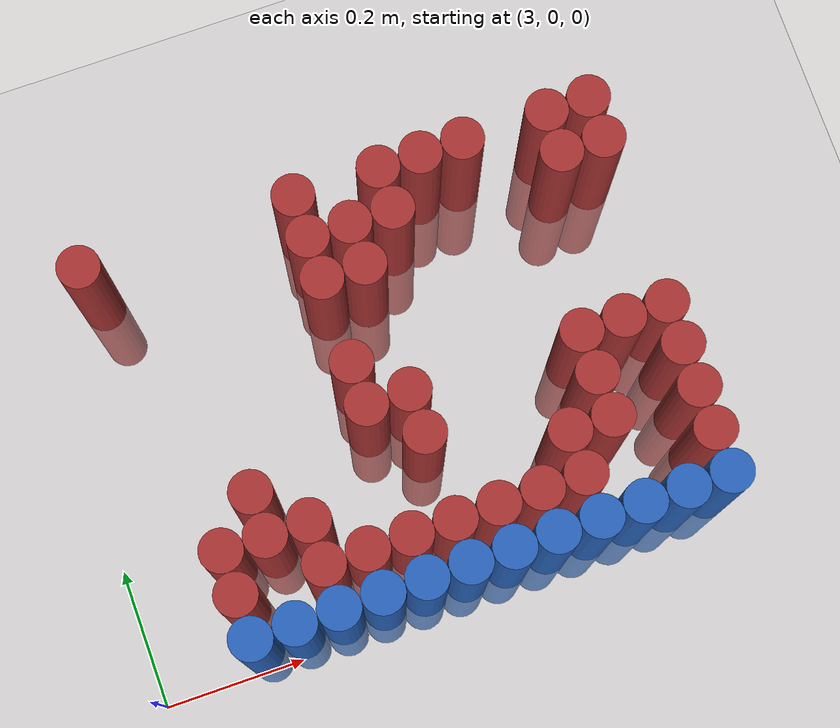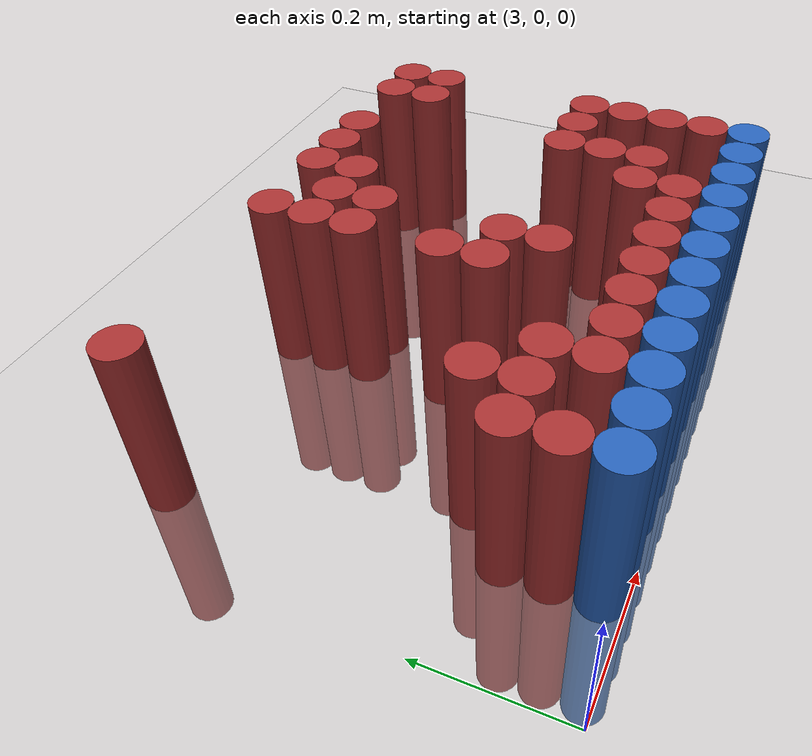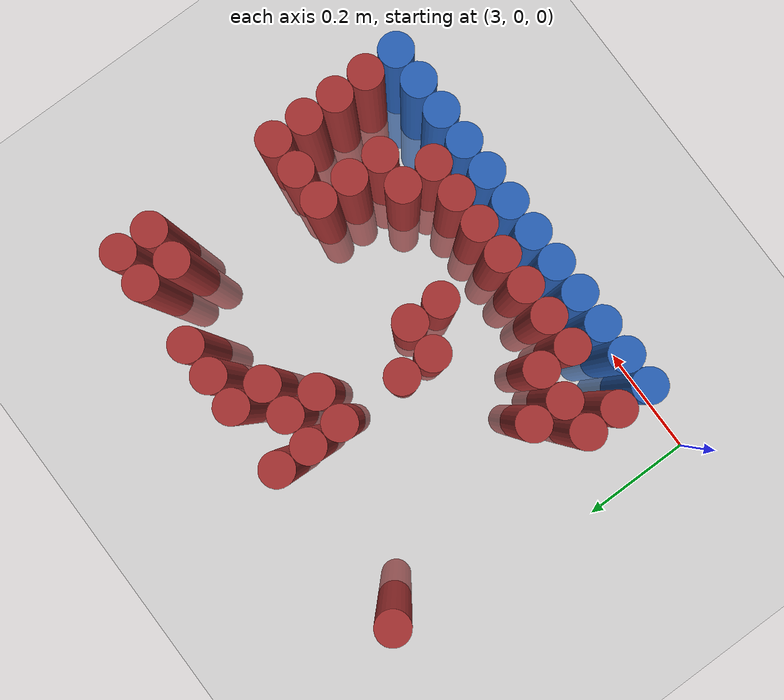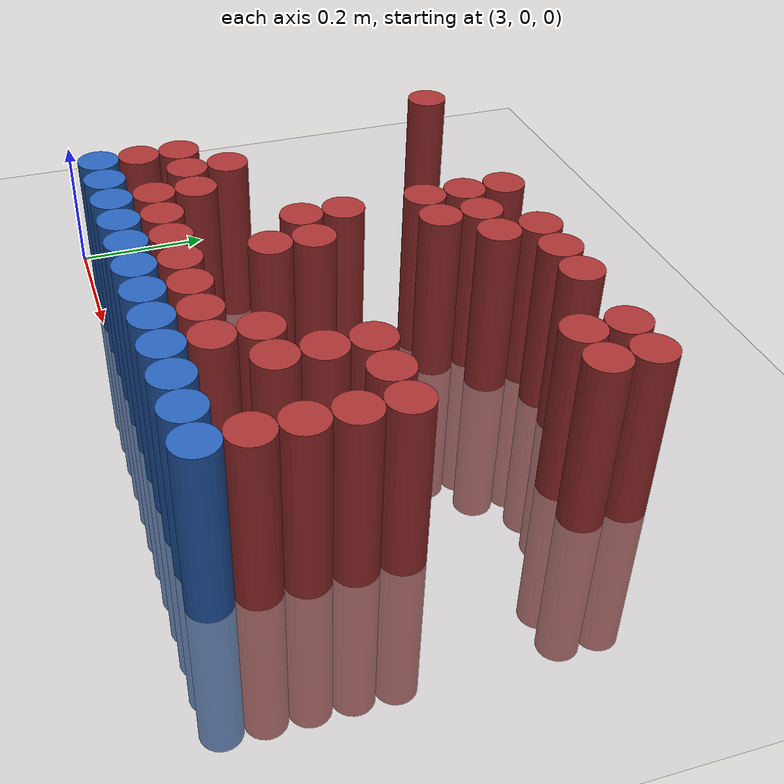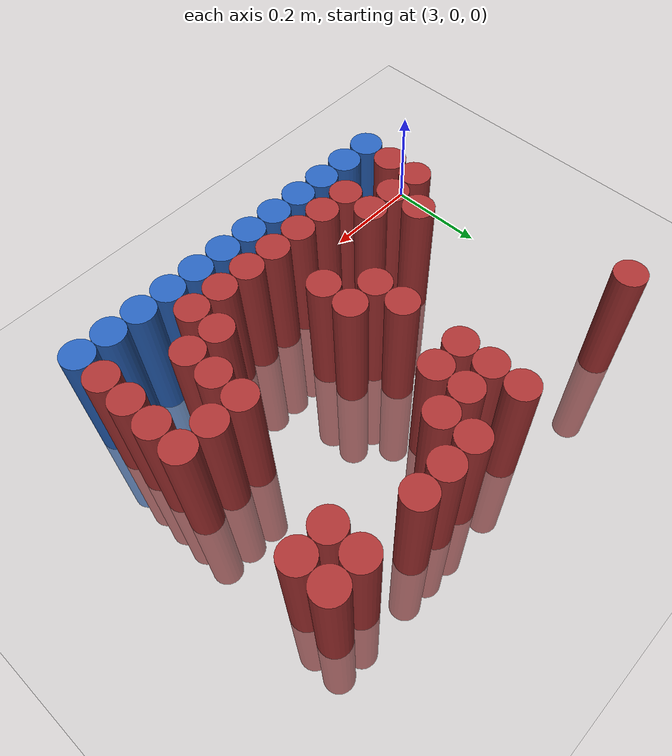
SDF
<sdf version="1.6">
 <world name="default">
  <model name="ground_plane">
   <static>1</static>
   <link name="link">
    <collision name="collision">
     <geometry><plane><normal>0 0 1</normal><size>100 100</size></plane></geometry>
     <surface><friction><ode><mu>100</mu><mu2>50</mu2></ode></friction></surface>
    </collision>
    <visual name="visual">
     <cast_shadows>0</cast_shadows>
     <geometry><plane><normal>0 0 1</normal><size>100 100</size></plane></geometry>
     <material>
      <script><uri>file://media/materials/scripts/gazebo.material</uri><name>Gazebo/Grey</name></script>
     </material>
    </visual>
   </link>
  </model>
  <model name="unit_cylinder_242">
   <static>1</static>
   <pose>3.090000 0.570000 0.000000 0.000000 0.000000 0.000000</pose>
   <link name="link">
    <inertial>
     <mass>1</mass>
     <inertia><ixx>0.145833</ixx><ixy>0</ixy><ixz>0</ixz><iyy>0.145833</iyy><iyz>0</iyz><izz>0.125</izz></inertia>
    </inertial>
    <collision name="collision">
     <geometry><cylinder><radius>0.030000</radius><length>0.5</length></cylinder></geometry>
    </collision>
    <visual name="visual">
     <geometry><cylinder><radius>0.030000</radius><length>0.5</length></cylinder></geometry>
     <material>
      <ambient>0.648000 0.192000 0.192000 1</ambient>
      <diffuse>0.648000 0.192000 0.192000 1</diffuse>
     </material>
     <material>
      <script><name>Gazebo/Grey</name><uri>file://media/materials/scripts/gazebo.material</uri></script>
     </material>
    </visual>
   </link>
  </model>
  <model name="unit_cylinder_243">
   <static>1</static>
   <pose>3.390000 0.570000 0.000000 0.000000 0.000000 0.000000</pose>
   <link name="link">
    <inertial>
     <mass>1</mass>
     <inertia><ixx>0.145833</ixx><ixy>0</ixy><ixz>0</ixz><iyy>0.145833</iyy><iyz>0</iyz><izz>0.125</izz></inertia>
    </inertial>
    <collision name="collision">
     <geometry><cylinder><radius>0.030000</radius><length>0.5</length></cylinder></geometry>
    </collision>
    <visual name="visual">
     <geometry><cylinder><radius>0.030000</radius><length>0.5</length></cylinder></geometry>
     <material>
      <ambient>0.648000 0.192000 0.192000 1</ambient>
      <diffuse>0.648000 0.192000 0.192000 1</diffuse>
     </material>
     <material>
      <script><name>Gazebo/Grey</name><uri>file://media/materials/scripts/gazebo.material</uri></script>
     </material>
    </visual>
   </link>
  </model>
  <model name="unit_cylinder_244">
   <static>1</static>
   <pose>3.510000 0.570000 0.000000 0.000000 0.000000 0.000000</pose>
   <link name="link">
    <inertial>
     <mass>1</mass>
     <inertia><ixx>0.145833</ixx><ixy>0</ixy><ixz>0</ixz><iyy>0.145833</iyy><iyz>0</iyz><izz>0.125</izz></inertia>
    </inertial>
    <collision name="collision">
     <geometry><cylinder><radius>0.030000</radius><length>0.5</length></cylinder></geometry>
    </collision>
    <visual name="visual">
     <geometry><cylinder><radius>0.030000</radius><length>0.5</length></cylinder></geometry>
     <material>
      <ambient>0.648000 0.192000 0.192000 1</ambient>
      <diffuse>0.648000 0.192000 0.192000 1</diffuse>
     </material>
     <material>
      <script><name>Gazebo/Grey</name><uri>file://media/materials/scripts/gazebo.material</uri></script>
     </material>
    </visual>
   </link>
  </model>
  <model name="unit_cylinder_245">
   <static>1</static>
   <pose>3.570000 0.570000 0.000000 0.000000 0.000000 0.000000</pose>
   <link name="link">
    <inertial>
     <mass>1</mass>
     <inertia><ixx>0.145833</ixx><ixy>0</ixy><ixz>0</ixz><iyy>0.145833</iyy><iyz>0</iyz><izz>0.125</izz></inertia>
    </inertial>
    <collision name="collision">
     <geometry><cylinder><radius>0.030000</radius><length>0.5</length></cylinder></geometry>
    </collision>
    <visual name="visual">
     <geometry><cylinder><radius>0.030000</radius><length>0.5</length></cylinder></geometry>
     <material>
      <ambient>0.648000 0.192000 0.192000 1</ambient>
      <diffuse>0.648000 0.192000 0.192000 1</diffuse>
     </material>
     <material>
      <script><name>Gazebo/Grey</name><uri>file://media/materials/scripts/gazebo.material</uri></script>
     </material>
    </visual>
   </link>
  </model>
  <model name="unit_cylinder_246">
   <static>1</static>
   <pose>3.630000 0.570000 0.000000 0.000000 0.000000 0.000000</pose>
   <link name="link">
    <inertial>
     <mass>1</mass>
     <inertia><ixx>0.145833</ixx><ixy>0</ixy><ixz>0</ixz><iyy>0.145833</iyy><iyz>0</iyz><izz>0.125</izz></inertia>
    </inertial>
    <collision name="collision">
     <geometry><cylinder><radius>0.030000</radius><length>0.5</length></cylinder></geometry>
    </collision>
    <visual name="visual">
     <geometry><cylinder><radius>0.030000</radius><length>0.5</length></cylinder></geometry>
     <material>
      <ambient>0.648000 0.192000 0.192000 1</ambient>
      <diffuse>0.648000 0.192000 0.192000 1</diffuse>
     </material>
     <material>
      <script><name>Gazebo/Grey</name><uri>file://media/materials/scripts/gazebo.material</uri></script>
     </material>
    </visual>
   </link>
  </model>
  <model name="unit_cylinder_247">
   <static>1</static>
   <pose>3.750000 0.570000 0.000000 0.000000 0.000000 0.000000</pose>
   <link name="link">
    <inertial>
     <mass>1</mass>
     <inertia><ixx>0.145833</ixx><ixy>0</ixy><ixz>0</ixz><iyy>0.145833</iyy><iyz>0</iyz><izz>0.125</izz></inertia>
    </inertial>
    <collision name="collision">
     <geometry><cylinder><radius>0.030000</radius><length>0.5</length></cylinder></geometry>
    </collision>
    <visual name="visual">
     <geometry><cylinder><radius>0.030000</radius><length>0.5</length></cylinder></geometry>
     <material>
      <ambient>0.648000 0.192000 0.192000 1</ambient>
      <diffuse>0.648000 0.192000 0.192000 1</diffuse>
     </material>
     <material>
      <script><name>Gazebo/Grey</name><uri>file://media/materials/scripts/gazebo.material</uri></script>
     </material>
    </visual>
   </link>
  </model>
  <model name="unit_cylinder_248">
   <static>1</static>
   <pose>3.810000 0.570000 0.000000 0.000000 0.000000 0.000000</pose>
   <link name="link">
    <inertial>
     <mass>1</mass>
     <inertia><ixx>0.145833</ixx><ixy>0</ixy><ixz>0</ixz><iyy>0.145833</iyy><iyz>0</iyz><izz>0.125</izz></inertia>
    </inertial>
    <collision name="collision">
     <geometry><cylinder><radius>0.030000</radius><length>0.5</length></cylinder></geometry>
    </collision>
    <visual name="visual">
     <geometry><cylinder><radius>0.030000</radius><length>0.5</length></cylinder></geometry>
     <material>
      <ambient>0.648000 0.192000 0.192000 1</ambient>
      <diffuse>0.648000 0.192000 0.192000 1</diffuse>
     </material>
     <material>
      <script><name>Gazebo/Grey</name><uri>file://media/materials/scripts/gazebo.material</uri></script>
     </material>
    </visual>
   </link>
  </model>
  <model name="unit_cylinder_255">
   <static>1</static>
   <pose>3.390000 0.510000 0.000000 0.000000 0.000000 0.000000</pose>
   <link name="link">
    <inertial>
     <mass>1</mass>
     <inertia><ixx>0.145833</ixx><ixy>0</ixy><ixz>0</ixz><iyy>0.145833</iyy><iyz>0</iyz><izz>0.125</izz></inertia>
    </inertial>
    <collision name="collision">
     <geometry><cylinder><radius>0.030000</radius><length>0.5</length></cylinder></geometry>
    </collision>
    <visual name="visual">
     <geometry><cylinder><radius>0.030000</radius><length>0.5</length></cylinder></geometry>
     <material>
      <ambient>0.648000 0.192000 0.192000 1</ambient>
      <diffuse>0.648000 0.192000 0.192000 1</diffuse>
     </material>
     <material>
      <script><name>Gazebo/Grey</name><uri>file://media/materials/scripts/gazebo.material</uri></script>
     </material>
    </visual>
   </link>
  </model>
  <model name="unit_cylinder_256">
   <static>1</static>
   <pose>3.450000 0.510000 0.000000 0.000000 0.000000 0.000000</pose>
   <link name="link">
    <inertial>
     <mass>1</mass>
     <inertia><ixx>0.145833</ixx><ixy>0</ixy><ixz>0</ixz><iyy>0.145833</iyy><iyz>0</iyz><izz>0.125</izz></inertia>
    </inertial>
    <collision name="collision">
     <geometry><cylinder><radius>0.030000</radius><length>0.5</length></cylinder></geometry>
    </collision>
    <visual name="visual">
     <geometry><cylinder><radius>0.030000</radius><length>0.5</length></cylinder></geometry>
     <material>
      <ambient>0.648000 0.192000 0.192000 1</ambient>
      <diffuse>0.648000 0.192000 0.192000 1</diffuse>
     </material>
     <material>
      <script><name>Gazebo/Grey</name><uri>file://media/materials/scripts/gazebo.material</uri></script>
     </material>
    </visual>
   </link>
  </model>
  <model name="unit_cylinder_257">
   <static>1</static>
   <pose>3.510000 0.510000 0.000000 0.000000 0.000000 0.000000</pose>
   <link name="link">
    <inertial>
     <mass>1</mass>
     <inertia><ixx>0.145833</ixx><ixy>0</ixy><ixz>0</ixz><iyy>0.145833</iyy><iyz>0</iyz><izz>0.125</izz></inertia>
    </inertial>
    <collision name="collision">
     <geometry><cylinder><radius>0.030000</radius><length>0.5</length></cylinder></geometry>
    </collision>
    <visual name="visual">
     <geometry><cylinder><radius>0.030000</radius><length>0.5</length></cylinder></geometry>
     <material>
      <ambient>0.648000 0.192000 0.192000 1</ambient>
      <diffuse>0.648000 0.192000 0.192000 1</diffuse>
     </material>
     <material>
      <script><name>Gazebo/Grey</name><uri>file://media/materials/scripts/gazebo.material</uri></script>
     </material>
    </visual>
   </link>
  </model>
  <model name="unit_cylinder_258">
   <static>1</static>
   <pose>3.750000 0.510000 0.000000 0.000000 0.000000 0.000000</pose>
   <link name="link">
    <inertial>
     <mass>1</mass>
     <inertia><ixx>0.145833</ixx><ixy>0</ixy><ixz>0</ixz><iyy>0.145833</iyy><iyz>0</iyz><izz>0.125</izz></inertia>
    </inertial>
    <collision name="collision">
     <geometry><cylinder><radius>0.030000</radius><length>0.5</length></cylinder></geometry>
    </collision>
    <visual name="visual">
     <geometry><cylinder><radius>0.030000</radius><length>0.5</length></cylinder></geometry>
     <material>
      <ambient>0.648000 0.192000 0.192000 1</ambient>
      <diffuse>0.648000 0.192000 0.192000 1</diffuse>
     </material>
     <material>
      <script><name>Gazebo/Grey</name><uri>file://media/materials/scripts/gazebo.material</uri></script>
     </material>
    </visual>
   </link>
  </model>
  <model name="unit_cylinder_259">
   <static>1</static>
   <pose>3.810000 0.510000 0.000000 0.000000 0.000000 0.000000</pose>
   <link name="link">
    <inertial>
     <mass>1</mass>
     <inertia><ixx>0.145833</ixx><ixy>0</ixy><ixz>0</ixz><iyy>0.145833</iyy><iyz>0</iyz><izz>0.125</izz></inertia>
    </inertial>
    <collision name="collision">
     <geometry><cylinder><radius>0.030000</radius><length>0.5</length></cylinder></geometry>
    </collision>
    <visual name="visual">
     <geometry><cylinder><radius>0.030000</radius><length>0.5</length></cylinder></geometry>
     <material>
      <ambient>0.648000 0.192000 0.192000 1</ambient>
      <diffuse>0.648000 0.192000 0.192000 1</diffuse>
     </material>
     <material>
      <script><name>Gazebo/Grey</name><uri>file://media/materials/scripts/gazebo.material</uri></script>
     </material>
    </visual>
   </link>
  </model>
  <model name="unit_cylinder_265">
   <static>1</static>
   <pose>3.390000 0.450000 0.000000 0.000000 0.000000 0.000000</pose>
   <link name="link">
    <inertial>
     <mass>1</mass>
     <inertia><ixx>0.145833</ixx><ixy>0</ixy><ixz>0</ixz><iyy>0.145833</iyy><iyz>0</iyz><izz>0.125</izz></inertia>
    </inertial>
    <collision name="collision">
     <geometry><cylinder><radius>0.030000</radius><length>0.5</length></cylinder></geometry>
    </collision>
    <visual name="visual">
     <geometry><cylinder><radius>0.030000</radius><length>0.5</length></cylinder></geometry>
     <material>
      <ambient>0.648000 0.192000 0.192000 1</ambient>
      <diffuse>0.648000 0.192000 0.192000 1</diffuse>
     </material>
     <material>
      <script><name>Gazebo/Grey</name><uri>file://media/materials/scripts/gazebo.material</uri></script>
     </material>
    </visual>
   </link>
  </model>
  <model name="unit_cylinder_266">
   <static>1</static>
   <pose>3.450000 0.450000 0.000000 0.000000 0.000000 0.000000</pose>
   <link name="link">
    <inertial>
     <mass>1</mass>
     <inertia><ixx>0.145833</ixx><ixy>0</ixy><ixz>0</ixz><iyy>0.145833</iyy><iyz>0</iyz><izz>0.125</izz></inertia>
    </inertial>
    <collision name="collision">
     <geometry><cylinder><radius>0.030000</radius><length>0.5</length></cylinder></geometry>
    </collision>
    <visual name="visual">
     <geometry><cylinder><radius>0.030000</radius><length>0.5</length></cylinder></geometry>
     <material>
      <ambient>0.648000 0.192000 0.192000 1</ambient>
      <diffuse>0.648000 0.192000 0.192000 1</diffuse>
     </material>
     <material>
      <script><name>Gazebo/Grey</name><uri>file://media/materials/scripts/gazebo.material</uri></script>
     </material>
    </visual>
   </link>
  </model>
  <model name="unit_cylinder_277">
   <static>1</static>
   <pose>3.390000 0.330000 0.000000 0.000000 0.000000 0.000000</pose>
   <link name="link">
    <inertial>
     <mass>1</mass>
     <inertia><ixx>0.145833</ixx><ixy>0</ixy><ixz>0</ixz><iyy>0.145833</iyy><iyz>0</iyz><izz>0.125</izz></inertia>
    </inertial>
    <collision name="collision">
     <geometry><cylinder><radius>0.030000</radius><length>0.5</length></cylinder></geometry>
    </collision>
    <visual name="visual">
     <geometry><cylinder><radius>0.030000</radius><length>0.5</length></cylinder></geometry>
     <material>
      <ambient>0.648000 0.192000 0.192000 1</ambient>
      <diffuse>0.648000 0.192000 0.192000 1</diffuse>
     </material>
     <material>
      <script><name>Gazebo/Grey</name><uri>file://media/materials/scripts/gazebo.material</uri></script>
     </material>
    </visual>
   </link>
  </model>
  <model name="unit_cylinder_286">
   <static>1</static>
   <pose>3.390000 0.270000 0.000000 0.000000 0.000000 0.000000</pose>
   <link name="link">
    <inertial>
     <mass>1</mass>
     <inertia><ixx>0.145833</ixx><ixy>0</ixy><ixz>0</ixz><iyy>0.145833</iyy><iyz>0</iyz><izz>0.125</izz></inertia>
    </inertial>
    <collision name="collision">
     <geometry><cylinder><radius>0.030000</radius><length>0.5</length></cylinder></geometry>
    </collision>
    <visual name="visual">
     <geometry><cylinder><radius>0.030000</radius><length>0.5</length></cylinder></geometry>
     <material>
      <ambient>0.648000 0.192000 0.192000 1</ambient>
      <diffuse>0.648000 0.192000 0.192000 1</diffuse>
     </material>
     <material>
      <script><name>Gazebo/Grey</name><uri>file://media/materials/scripts/gazebo.material</uri></script>
     </material>
    </visual>
   </link>
  </model>
  <model name="unit_cylinder_287">
   <static>1</static>
   <pose>3.450000 0.270000 0.000000 0.000000 0.000000 0.000000</pose>
   <link name="link">
    <inertial>
     <mass>1</mass>
     <inertia><ixx>0.145833</ixx><ixy>0</ixy><ixz>0</ixz><iyy>0.145833</iyy><iyz>0</iyz><izz>0.125</izz></inertia>
    </inertial>
    <collision name="collision">
     <geometry><cylinder><radius>0.030000</radius><length>0.5</length></cylinder></geometry>
    </collision>
    <visual name="visual">
     <geometry><cylinder><radius>0.030000</radius><length>0.5</length></cylinder></geometry>
     <material>
      <ambient>0.648000 0.192000 0.192000 1</ambient>
      <diffuse>0.648000 0.192000 0.192000 1</diffuse>
     </material>
     <material>
      <script><name>Gazebo/Grey</name><uri>file://media/materials/scripts/gazebo.material</uri></script>
     </material>
    </visual>
   </link>
  </model>
  <model name="unit_cylinder_288">
   <static>1</static>
   <pose>3.690000 0.270000 0.000000 0.000000 0.000000 0.000000</pose>
   <link name="link">
    <inertial>
     <mass>1</mass>
     <inertia><ixx>0.145833</ixx><ixy>0</ixy><ixz>0</ixz><iyy>0.145833</iyy><iyz>0</iyz><izz>0.125</izz></inertia>
    </inertial>
    <collision name="collision">
     <geometry><cylinder><radius>0.030000</radius><length>0.5</length></cylinder></geometry>
    </collision>
    <visual name="visual">
     <geometry><cylinder><radius>0.030000</radius><length>0.5</length></cylinder></geometry>
     <material>
      <ambient>0.648000 0.192000 0.192000 1</ambient>
      <diffuse>0.648000 0.192000 0.192000 1</diffuse>
     </material>
     <material>
      <script><name>Gazebo/Grey</name><uri>file://media/materials/scripts/gazebo.material</uri></script>
     </material>
    </visual>
   </link>
  </model>
  <model name="unit_cylinder_289">
   <static>1</static>
   <pose>3.750000 0.270000 0.000000 0.000000 0.000000 0.000000</pose>
   <link name="link">
    <inertial>
     <mass>1</mass>
     <inertia><ixx>0.145833</ixx><ixy>0</ixy><ixz>0</ixz><iyy>0.145833</iyy><iyz>0</iyz><izz>0.125</izz></inertia>
    </inertial>
    <collision name="collision">
     <geometry><cylinder><radius>0.030000</radius><length>0.5</length></cylinder></geometry>
    </collision>
    <visual name="visual">
     <geometry><cylinder><radius>0.030000</radius><length>0.5</length></cylinder></geometry>
     <material>
      <ambient>0.648000 0.192000 0.192000 1</ambient>
      <diffuse>0.648000 0.192000 0.192000 1</diffuse>
     </material>
     <material>
      <script><name>Gazebo/Grey</name><uri>file://media/materials/scripts/gazebo.material</uri></script>
     </material>
    </visual>
   </link>
  </model>
  <model name="unit_cylinder_290">
   <static>1</static>
   <pose>3.810000 0.270000 0.000000 0.000000 0.000000 0.000000</pose>
   <link name="link">
    <inertial>
     <mass>1</mass>
     <inertia><ixx>0.145833</ixx><ixy>0</ixy><ixz>0</ixz><iyy>0.145833</iyy><iyz>0</iyz><izz>0.125</izz></inertia>
    </inertial>
    <collision name="collision">
     <geometry><cylinder><radius>0.030000</radius><length>0.5</length></cylinder></geometry>
    </collision>
    <visual name="visual">
     <geometry><cylinder><radius>0.030000</radius><length>0.5</length></cylinder></geometry>
     <material>
      <ambient>0.648000 0.192000 0.192000 1</ambient>
      <diffuse>0.648000 0.192000 0.192000 1</diffuse>
     </material>
     <material>
      <script><name>Gazebo/Grey</name><uri>file://media/materials/scripts/gazebo.material</uri></script>
     </material>
    </visual>
   </link>
  </model>
  <model name="unit_cylinder_295">
   <static>1</static>
   <pose>3.210000 0.210000 0.000000 0.000000 0.000000 0.000000</pose>
   <link name="link">
    <inertial>
     <mass>1</mass>
     <inertia><ixx>0.145833</ixx><ixy>0</ixy><ixz>0</ixz><iyy>0.145833</iyy><iyz>0</iyz><izz>0.125</izz></inertia>
    </inertial>
    <collision name="collision">
     <geometry><cylinder><radius>0.030000</radius><length>0.5</length></cylinder></geometry>
    </collision>
    <visual name="visual">
     <geometry><cylinder><radius>0.030000</radius><length>0.5</length></cylinder></geometry>
     <material>
      <ambient>0.648000 0.192000 0.192000 1</ambient>
      <diffuse>0.648000 0.192000 0.192000 1</diffuse>
     </material>
     <material>
      <script><name>Gazebo/Grey</name><uri>file://media/materials/scripts/gazebo.material</uri></script>
     </material>
    </visual>
   </link>
  </model>
  <model name="unit_cylinder_296">
   <static>1</static>
   <pose>3.450000 0.210000 0.000000 0.000000 0.000000 0.000000</pose>
   <link name="link">
    <inertial>
     <mass>1</mass>
     <inertia><ixx>0.145833</ixx><ixy>0</ixy><ixz>0</ixz><iyy>0.145833</iyy><iyz>0</iyz><izz>0.125</izz></inertia>
    </inertial>
    <collision name="collision">
     <geometry><cylinder><radius>0.030000</radius><length>0.5</length></cylinder></geometry>
    </collision>
    <visual name="visual">
     <geometry><cylinder><radius>0.030000</radius><length>0.5</length></cylinder></geometry>
     <material>
      <ambient>0.648000 0.192000 0.192000 1</ambient>
      <diffuse>0.648000 0.192000 0.192000 1</diffuse>
     </material>
     <material>
      <script><name>Gazebo/Grey</name><uri>file://media/materials/scripts/gazebo.material</uri></script>
     </material>
    </visual>
   </link>
  </model>
  <model name="unit_cylinder_297">
   <static>1</static>
   <pose>3.690000 0.210000 0.000000 0.000000 0.000000 0.000000</pose>
   <link name="link">
    <inertial>
     <mass>1</mass>
     <inertia><ixx>0.145833</ixx><ixy>0</ixy><ixz>0</ixz><iyy>0.145833</iyy><iyz>0</iyz><izz>0.125</izz></inertia>
    </inertial>
    <collision name="collision">
     <geometry><cylinder><radius>0.030000</radius><length>0.5</length></cylinder></geometry>
    </collision>
    <visual name="visual">
     <geometry><cylinder><radius>0.030000</radius><length>0.5</length></cylinder></geometry>
     <material>
      <ambient>0.648000 0.192000 0.192000 1</ambient>
      <diffuse>0.648000 0.192000 0.192000 1</diffuse>
     </material>
     <material>
      <script><name>Gazebo/Grey</name><uri>file://media/materials/scripts/gazebo.material</uri></script>
     </material>
    </visual>
   </link>
  </model>
  <model name="unit_cylinder_298">
   <static>1</static>
   <pose>3.810000 0.210000 0.000000 0.000000 0.000000 0.000000</pose>
   <link name="link">
    <inertial>
     <mass>1</mass>
     <inertia><ixx>0.145833</ixx><ixy>0</ixy><ixz>0</ixz><iyy>0.145833</iyy><iyz>0</iyz><izz>0.125</izz></inertia>
    </inertial>
    <collision name="collision">
     <geometry><cylinder><radius>0.030000</radius><length>0.5</length></cylinder></geometry>
    </collision>
    <visual name="visual">
     <geometry><cylinder><radius>0.030000</radius><length>0.5</length></cylinder></geometry>
     <material>
      <ambient>0.648000 0.192000 0.192000 1</ambient>
      <diffuse>0.648000 0.192000 0.192000 1</diffuse>
     </material>
     <material>
      <script><name>Gazebo/Grey</name><uri>file://media/materials/scripts/gazebo.material</uri></script>
     </material>
    </visual>
   </link>
  </model>
  <model name="unit_cylinder_301">
   <static>1</static>
   <pose>3.150000 0.150000 0.000000 0.000000 0.000000 0.000000</pose>
   <link name="link">
    <inertial>
     <mass>1</mass>
     <inertia><ixx>0.145833</ixx><ixy>0</ixy><ixz>0</ixz><iyy>0.145833</iyy><iyz>0</iyz><izz>0.125</izz></inertia>
    </inertial>
    <collision name="collision">
     <geometry><cylinder><radius>0.030000</radius><length>0.5</length></cylinder></geometry>
    </collision>
    <visual name="visual">
     <geometry><cylinder><radius>0.030000</radius><length>0.5</length></cylinder></geometry>
     <material>
      <ambient>0.648000 0.192000 0.192000 1</ambient>
      <diffuse>0.648000 0.192000 0.192000 1</diffuse>
     </material>
     <material>
      <script><name>Gazebo/Grey</name><uri>file://media/materials/scripts/gazebo.material</uri></script>
     </material>
    </visual>
   </link>
  </model>
  <model name="unit_cylinder_302">
   <static>1</static>
   <pose>3.210000 0.150000 0.000000 0.000000 0.000000 0.000000</pose>
   <link name="link">
    <inertial>
     <mass>1</mass>
     <inertia><ixx>0.145833</ixx><ixy>0</ixy><ixz>0</ixz><iyy>0.145833</iyy><iyz>0</iyz><izz>0.125</izz></inertia>
    </inertial>
    <collision name="collision">
     <geometry><cylinder><radius>0.030000</radius><length>0.5</length></cylinder></geometry>
    </collision>
    <visual name="visual">
     <geometry><cylinder><radius>0.030000</radius><length>0.5</length></cylinder></geometry>
     <material>
      <ambient>0.648000 0.192000 0.192000 1</ambient>
      <diffuse>0.648000 0.192000 0.192000 1</diffuse>
     </material>
     <material>
      <script><name>Gazebo/Grey</name><uri>file://media/materials/scripts/gazebo.material</uri></script>
     </material>
    </visual>
   </link>
  </model>
  <model name="unit_cylinder_303">
   <static>1</static>
   <pose>3.270000 0.150000 0.000000 0.000000 0.000000 0.000000</pose>
   <link name="link">
    <inertial>
     <mass>1</mass>
     <inertia><ixx>0.145833</ixx><ixy>0</ixy><ixz>0</ixz><iyy>0.145833</iyy><iyz>0</iyz><izz>0.125</izz></inertia>
    </inertial>
    <collision name="collision">
     <geometry><cylinder><radius>0.030000</radius><length>0.5</length></cylinder></geometry>
    </collision>
    <visual name="visual">
     <geometry><cylinder><radius>0.030000</radius><length>0.5</length></cylinder></geometry>
     <material>
      <ambient>0.648000 0.192000 0.192000 1</ambient>
      <diffuse>0.648000 0.192000 0.192000 1</diffuse>
     </material>
     <material>
      <script><name>Gazebo/Grey</name><uri>file://media/materials/scripts/gazebo.material</uri></script>
     </material>
    </visual>
   </link>
  </model>
  <model name="unit_cylinder_304">
   <static>1</static>
   <pose>3.630000 0.150000 0.000000 0.000000 0.000000 0.000000</pose>
   <link name="link">
    <inertial>
     <mass>1</mass>
     <inertia><ixx>0.145833</ixx><ixy>0</ixy><ixz>0</ixz><iyy>0.145833</iyy><iyz>0</iyz><izz>0.125</izz></inertia>
    </inertial>
    <collision name="collision">
     <geometry><cylinder><radius>0.030000</radius><length>0.5</length></cylinder></geometry>
    </collision>
    <visual name="visual">
     <geometry><cylinder><radius>0.030000</radius><length>0.5</length></cylinder></geometry>
     <material>
      <ambient>0.648000 0.192000 0.192000 1</ambient>
      <diffuse>0.648000 0.192000 0.192000 1</diffuse>
     </material>
     <material>
      <script><name>Gazebo/Grey</name><uri>file://media/materials/scripts/gazebo.material</uri></script>
     </material>
    </visual>
   </link>
  </model>
  <model name="unit_cylinder_305">
   <static>1</static>
   <pose>3.690000 0.150000 0.000000 0.000000 0.000000 0.000000</pose>
   <link name="link">
    <inertial>
     <mass>1</mass>
     <inertia><ixx>0.145833</ixx><ixy>0</ixy><ixz>0</ixz><iyy>0.145833</iyy><iyz>0</iyz><izz>0.125</izz></inertia>
    </inertial>
    <collision name="collision">
     <geometry><cylinder><radius>0.030000</radius><length>0.5</length></cylinder></geometry>
    </collision>
    <visual name="visual">
     <geometry><cylinder><radius>0.030000</radius><length>0.5</length></cylinder></geometry>
     <material>
      <ambient>0.648000 0.192000 0.192000 1</ambient>
      <diffuse>0.648000 0.192000 0.192000 1</diffuse>
     </material>
     <material>
      <script><name>Gazebo/Grey</name><uri>file://media/materials/scripts/gazebo.material</uri></script>
     </material>
    </visual>
   </link>
  </model>
  <model name="unit_cylinder_306">
   <static>1</static>
   <pose>3.810000 0.150000 0.000000 0.000000 0.000000 0.000000</pose>
   <link name="link">
    <inertial>
     <mass>1</mass>
     <inertia><ixx>0.145833</ixx><ixy>0</ixy><ixz>0</ixz><iyy>0.145833</iyy><iyz>0</iyz><izz>0.125</izz></inertia>
    </inertial>
    <collision name="collision">
     <geometry><cylinder><radius>0.030000</radius><length>0.5</length></cylinder></geometry>
    </collision>
    <visual name="visual">
     <geometry><cylinder><radius>0.030000</radius><length>0.5</length></cylinder></geometry>
     <material>
      <ambient>0.648000 0.192000 0.192000 1</ambient>
      <diffuse>0.648000 0.192000 0.192000 1</diffuse>
     </material>
     <material>
      <script><name>Gazebo/Grey</name><uri>file://media/materials/scripts/gazebo.material</uri></script>
     </material>
    </visual>
   </link>
  </model>
  <model name="unit_cylinder_318">
   <static>1</static>
   <pose>3.150000 0.090000 0.000000 0.000000 0.000000 0.000000</pose>
   <link name="link">
    <inertial>
     <mass>1</mass>
     <inertia><ixx>0.145833</ixx><ixy>0</ixy><ixz>0</ixz><iyy>0.145833</iyy><iyz>0</iyz><izz>0.125</izz></inertia>
    </inertial>
    <collision name="collision">
     <geometry><cylinder><radius>0.030000</radius><length>0.5</length></cylinder></geometry>
    </collision>
    <visual name="visual">
     <geometry><cylinder><radius>0.030000</radius><length>0.5</length></cylinder></geometry>
     <material>
      <ambient>0.648000 0.192000 0.192000 1</ambient>
      <diffuse>0.648000 0.192000 0.192000 1</diffuse>
     </material>
     <material>
      <script><name>Gazebo/Grey</name><uri>file://media/materials/scripts/gazebo.material</uri></script>
     </material>
    </visual>
   </link>
  </model>
  <model name="unit_cylinder_319">
   <static>1</static>
   <pose>3.270000 0.090000 0.000000 0.000000 0.000000 0.000000</pose>
   <link name="link">
    <inertial>
     <mass>1</mass>
     <inertia><ixx>0.145833</ixx><ixy>0</ixy><ixz>0</ixz><iyy>0.145833</iyy><iyz>0</iyz><izz>0.125</izz></inertia>
    </inertial>
    <collision name="collision">
     <geometry><cylinder><radius>0.030000</radius><length>0.5</length></cylinder></geometry>
    </collision>
    <visual name="visual">
     <geometry><cylinder><radius>0.030000</radius><length>0.5</length></cylinder></geometry>
     <material>
      <ambient>0.648000 0.192000 0.192000 1</ambient>
      <diffuse>0.648000 0.192000 0.192000 1</diffuse>
     </material>
     <material>
      <script><name>Gazebo/Grey</name><uri>file://media/materials/scripts/gazebo.material</uri></script>
     </material>
    </visual>
   </link>
  </model>
  <model name="unit_cylinder_320">
   <static>1</static>
   <pose>3.330000 0.090000 0.000000 0.000000 0.000000 0.000000</pose>
   <link name="link">
    <inertial>
     <mass>1</mass>
     <inertia><ixx>0.145833</ixx><ixy>0</ixy><ixz>0</ixz><iyy>0.145833</iyy><iyz>0</iyz><izz>0.125</izz></inertia>
    </inertial>
    <collision name="collision">
     <geometry><cylinder><radius>0.030000</radius><length>0.5</length></cylinder></geometry>
    </collision>
    <visual name="visual">
     <geometry><cylinder><radius>0.030000</radius><length>0.5</length></cylinder></geometry>
     <material>
      <ambient>0.648000 0.192000 0.192000 1</ambient>
      <diffuse>0.648000 0.192000 0.192000 1</diffuse>
     </material>
     <material>
      <script><name>Gazebo/Grey</name><uri>file://media/materials/scripts/gazebo.material</uri></script>
     </material>
    </visual>
   </link>
  </model>
  <model name="unit_cylinder_321">
   <static>1</static>
   <pose>3.390000 0.090000 0.000000 0.000000 0.000000 0.000000</pose>
   <link name="link">
    <inertial>
     <mass>1</mass>
     <inertia><ixx>0.145833</ixx><ixy>0</ixy><ixz>0</ixz><iyy>0.145833</iyy><iyz>0</iyz><izz>0.125</izz></inertia>
    </inertial>
    <collision name="collision">
     <geometry><cylinder><radius>0.030000</radius><length>0.5</length></cylinder></geometry>
    </collision>
    <visual name="visual">
     <geometry><cylinder><radius>0.030000</radius><length>0.5</length></cylinder></geometry>
     <material>
      <ambient>0.648000 0.192000 0.192000 1</ambient>
      <diffuse>0.648000 0.192000 0.192000 1</diffuse>
     </material>
     <material>
      <script><name>Gazebo/Grey</name><uri>file://media/materials/scripts/gazebo.material</uri></script>
     </material>
    </visual>
   </link>
  </model>
  <model name="unit_cylinder_322">
   <static>1</static>
   <pose>3.450000 0.090000 0.000000 0.000000 0.000000 0.000000</pose>
   <link name="link">
    <inertial>
     <mass>1</mass>
     <inertia><ixx>0.145833</ixx><ixy>0</ixy><ixz>0</ixz><iyy>0.145833</iyy><iyz>0</iyz><izz>0.125</izz></inertia>
    </inertial>
    <collision name="collision">
     <geometry><cylinder><radius>0.030000</radius><length>0.5</length></cylinder></geometry>
    </collision>
    <visual name="visual">
     <geometry><cylinder><radius>0.030000</radius><length>0.5</length></cylinder></geometry>
     <material>
      <ambient>0.648000 0.192000 0.192000 1</ambient>
      <diffuse>0.648000 0.192000 0.192000 1</diffuse>
     </material>
     <material>
      <script><name>Gazebo/Grey</name><uri>file://media/materials/scripts/gazebo.material</uri></script>
     </material>
    </visual>
   </link>
  </model>
  <model name="unit_cylinder_323">
   <static>1</static>
   <pose>3.510000 0.090000 0.000000 0.000000 0.000000 0.000000</pose>
   <link name="link">
    <inertial>
     <mass>1</mass>
     <inertia><ixx>0.145833</ixx><ixy>0</ixy><ixz>0</ixz><iyy>0.145833</iyy><iyz>0</iyz><izz>0.125</izz></inertia>
    </inertial>
    <collision name="collision">
     <geometry><cylinder><radius>0.030000</radius><length>0.5</length></cylinder></geometry>
    </collision>
    <visual name="visual">
     <geometry><cylinder><radius>0.030000</radius><length>0.5</length></cylinder></geometry>
     <material>
      <ambient>0.648000 0.192000 0.192000 1</ambient>
      <diffuse>0.648000 0.192000 0.192000 1</diffuse>
     </material>
     <material>
      <script><name>Gazebo/Grey</name><uri>file://media/materials/scripts/gazebo.material</uri></script>
     </material>
    </visual>
   </link>
  </model>
  <model name="unit_cylinder_324">
   <static>1</static>
   <pose>3.570000 0.090000 0.000000 0.000000 0.000000 0.000000</pose>
   <link name="link">
    <inertial>
     <mass>1</mass>
     <inertia><ixx>0.145833</ixx><ixy>0</ixy><ixz>0</ixz><iyy>0.145833</iyy><iyz>0</iyz><izz>0.125</izz></inertia>
    </inertial>
    <collision name="collision">
     <geometry><cylinder><radius>0.030000</radius><length>0.5</length></cylinder></geometry>
    </collision>
    <visual name="visual">
     <geometry><cylinder><radius>0.030000</radius><length>0.5</length></cylinder></geometry>
     <material>
      <ambient>0.648000 0.192000 0.192000 1</ambient>
      <diffuse>0.648000 0.192000 0.192000 1</diffuse>
     </material>
     <material>
      <script><name>Gazebo/Grey</name><uri>file://media/materials/scripts/gazebo.material</uri></script>
     </material>
    </visual>
   </link>
  </model>
  <model name="unit_cylinder_325">
   <static>1</static>
   <pose>3.630000 0.090000 0.000000 0.000000 0.000000 0.000000</pose>
   <link name="link">
    <inertial>
     <mass>1</mass>
     <inertia><ixx>0.145833</ixx><ixy>0</ixy><ixz>0</ixz><iyy>0.145833</iyy><iyz>0</iyz><izz>0.125</izz></inertia>
    </inertial>
    <collision name="collision">
     <geometry><cylinder><radius>0.030000</radius><length>0.5</length></cylinder></geometry>
    </collision>
    <visual name="visual">
     <geometry><cylinder><radius>0.030000</radius><length>0.5</length></cylinder></geometry>
     <material>
      <ambient>0.648000 0.192000 0.192000 1</ambient>
      <diffuse>0.648000 0.192000 0.192000 1</diffuse>
     </material>
     <material>
      <script><name>Gazebo/Grey</name><uri>file://media/materials/scripts/gazebo.material</uri></script>
     </material>
    </visual>
   </link>
  </model>
  <model name="unit_cylinder_326">
   <static>1</static>
   <pose>3.810000 0.090000 0.000000 0.000000 0.000000 0.000000</pose>
   <link name="link">
    <inertial>
     <mass>1</mass>
     <inertia><ixx>0.145833</ixx><ixy>0</ixy><ixz>0</ixz><iyy>0.145833</iyy><iyz>0</iyz><izz>0.125</izz></inertia>
    </inertial>
    <collision name="collision">
     <geometry><cylinder><radius>0.030000</radius><length>0.5</length></cylinder></geometry>
    </collision>
    <visual name="visual">
     <geometry><cylinder><radius>0.030000</radius><length>0.5</length></cylinder></geometry>
     <material>
      <ambient>0.648000 0.192000 0.192000 1</ambient>
      <diffuse>0.648000 0.192000 0.192000 1</diffuse>
     </material>
     <material>
      <script><name>Gazebo/Grey</name><uri>file://media/materials/scripts/gazebo.material</uri></script>
     </material>
    </visual>
   </link>
  </model>
  <model name="unit_cylinder_345">
   <static>1</static>
   <pose>3.150000 0.030000 0.000000 0.000000 0.000000 0.000000</pose>
   <link name="link">
    <inertial>
     <mass>1</mass>
     <inertia><ixx>0.145833</ixx><ixy>0</ixy><ixz>0</ixz><iyy>0.145833</iyy><iyz>0</iyz><izz>0.125</izz></inertia>
    </inertial>
    <collision name="collision">
     <geometry><cylinder><radius>0.030000</radius><length>0.5</length></cylinder></geometry>
    </collision>
    <visual name="visual">
     <geometry><cylinder><radius>0.030000</radius><length>0.5</length></cylinder></geometry>
     <material>
      <ambient>0.152000 0.379000 0.720000 1</ambient>
      <diffuse>0.152000 0.379000 0.720000 1</diffuse>
     </material>
     <material>
      <script><name>Gazebo/Grey</name><uri>file://media/materials/scripts/gazebo.material</uri></script>
     </material>
    </visual>
   </link>
  </model>
  <model name="unit_cylinder_346">
   <static>1</static>
   <pose>3.210000 0.030000 0.000000 0.000000 0.000000 0.000000</pose>
   <link name="link">
    <inertial>
     <mass>1</mass>
     <inertia><ixx>0.145833</ixx><ixy>0</ixy><ixz>0</ixz><iyy>0.145833</iyy><iyz>0</iyz><izz>0.125</izz></inertia>
    </inertial>
    <collision name="collision">
     <geometry><cylinder><radius>0.030000</radius><length>0.5</length></cylinder></geometry>
    </collision>
    <visual name="visual">
     <geometry><cylinder><radius>0.030000</radius><length>0.5</length></cylinder></geometry>
     <material>
      <ambient>0.152000 0.379000 0.720000 1</ambient>
      <diffuse>0.152000 0.379000 0.720000 1</diffuse>
     </material>
     <material>
      <script><name>Gazebo/Grey</name><uri>file://media/materials/scripts/gazebo.material</uri></script>
     </material>
    </visual>
   </link>
  </model>
  <model name="unit_cylinder_347">
   <static>1</static>
   <pose>3.270000 0.030000 0.000000 0.000000 0.000000 0.000000</pose>
   <link name="link">
    <inertial>
     <mass>1</mass>
     <inertia><ixx>0.145833</ixx><ixy>0</ixy><ixz>0</ixz><iyy>0.145833</iyy><iyz>0</iyz><izz>0.125</izz></inertia>
    </inertial>
    <collision name="collision">
     <geometry><cylinder><radius>0.030000</radius><length>0.5</length></cylinder></geometry>
    </collision>
    <visual name="visual">
     <geometry><cylinder><radius>0.030000</radius><length>0.5</length></cylinder></geometry>
     <material>
      <ambient>0.152000 0.379000 0.720000 1</ambient>
      <diffuse>0.152000 0.379000 0.720000 1</diffuse>
     </material>
     <material>
      <script><name>Gazebo/Grey</name><uri>file://media/materials/scripts/gazebo.material</uri></script>
     </material>
    </visual>
   </link>
  </model>
  <model name="unit_cylinder_348">
   <static>1</static>
   <pose>3.330000 0.030000 0.000000 0.000000 0.000000 0.000000</pose>
   <link name="link">
    <inertial>
     <mass>1</mass>
     <inertia><ixx>0.145833</ixx><ixy>0</ixy><ixz>0</ixz><iyy>0.145833</iyy><iyz>0</iyz><izz>0.125</izz></inertia>
    </inertial>
    <collision name="collision">
     <geometry><cylinder><radius>0.030000</radius><length>0.5</length></cylinder></geometry>
    </collision>
    <visual name="visual">
     <geometry><cylinder><radius>0.030000</radius><length>0.5</length></cylinder></geometry>
     <material>
      <ambient>0.152000 0.379000 0.720000 1</ambient>
      <diffuse>0.152000 0.379000 0.720000 1</diffuse>
     </material>
     <material>
      <script><name>Gazebo/Grey</name><uri>file://media/materials/scripts/gazebo.material</uri></script>
     </material>
    </visual>
   </link>
  </model>
  <model name="unit_cylinder_349">
   <static>1</static>
   <pose>3.390000 0.030000 0.000000 0.000000 0.000000 0.000000</pose>
   <link name="link">
    <inertial>
     <mass>1</mass>
     <inertia><ixx>0.145833</ixx><ixy>0</ixy><ixz>0</ixz><iyy>0.145833</iyy><iyz>0</iyz><izz>0.125</izz></inertia>
    </inertial>
    <collision name="collision">
     <geometry><cylinder><radius>0.030000</radius><length>0.5</length></cylinder></geometry>
    </collision>
    <visual name="visual">
     <geometry><cylinder><radius>0.030000</radius><length>0.5</length></cylinder></geometry>
     <material>
      <ambient>0.152000 0.379000 0.720000 1</ambient>
      <diffuse>0.152000 0.379000 0.720000 1</diffuse>
     </material>
     <material>
      <script><name>Gazebo/Grey</name><uri>file://media/materials/scripts/gazebo.material</uri></script>
     </material>
    </visual>
   </link>
  </model>
  <model name="unit_cylinder_350">
   <static>1</static>
   <pose>3.450000 0.030000 0.000000 0.000000 0.000000 0.000000</pose>
   <link name="link">
    <inertial>
     <mass>1</mass>
     <inertia><ixx>0.145833</ixx><ixy>0</ixy><ixz>0</ixz><iyy>0.145833</iyy><iyz>0</iyz><izz>0.125</izz></inertia>
    </inertial>
    <collision name="collision">
     <geometry><cylinder><radius>0.030000</radius><length>0.5</length></cylinder></geometry>
    </collision>
    <visual name="visual">
     <geometry><cylinder><radius>0.030000</radius><length>0.5</length></cylinder></geometry>
     <material>
      <ambient>0.152000 0.379000 0.720000 1</ambient>
      <diffuse>0.152000 0.379000 0.720000 1</diffuse>
     </material>
     <material>
      <script><name>Gazebo/Grey</name><uri>file://media/materials/scripts/gazebo.material</uri></script>
     </material>
    </visual>
   </link>
  </model>
  <model name="unit_cylinder_351">
   <static>1</static>
   <pose>3.510000 0.030000 0.000000 0.000000 0.000000 0.000000</pose>
   <link name="link">
    <inertial>
     <mass>1</mass>
     <inertia><ixx>0.145833</ixx><ixy>0</ixy><ixz>0</ixz><iyy>0.145833</iyy><iyz>0</iyz><izz>0.125</izz></inertia>
    </inertial>
    <collision name="collision">
     <geometry><cylinder><radius>0.030000</radius><length>0.5</length></cylinder></geometry>
    </collision>
    <visual name="visual">
     <geometry><cylinder><radius>0.030000</radius><length>0.5</length></cylinder></geometry>
     <material>
      <ambient>0.152000 0.379000 0.720000 1</ambient>
      <diffuse>0.152000 0.379000 0.720000 1</diffuse>
     </material>
     <material>
      <script><name>Gazebo/Grey</name><uri>file://media/materials/scripts/gazebo.material</uri></script>
     </material>
    </visual>
   </link>
  </model>
  <model name="unit_cylinder_352">
   <static>1</static>
   <pose>3.570000 0.030000 0.000000 0.000000 0.000000 0.000000</pose>
   <link name="link">
    <inertial>
     <mass>1</mass>
     <inertia><ixx>0.145833</ixx><ixy>0</ixy><ixz>0</ixz><iyy>0.145833</iyy><iyz>0</iyz><izz>0.125</izz></inertia>
    </inertial>
    <collision name="collision">
     <geometry><cylinder><radius>0.030000</radius><length>0.5</length></cylinder></geometry>
    </collision>
    <visual name="visual">
     <geometry><cylinder><radius>0.030000</radius><length>0.5</length></cylinder></geometry>
     <material>
      <ambient>0.152000 0.379000 0.720000 1</ambient>
      <diffuse>0.152000 0.379000 0.720000 1</diffuse>
     </material>
     <material>
      <script><name>Gazebo/Grey</name><uri>file://media/materials/scripts/gazebo.material</uri></script>
     </material>
    </visual>
   </link>
  </model>
  <model name="unit_cylinder_353">
   <static>1</static>
   <pose>3.630000 0.030000 0.000000 0.000000 0.000000 0.000000</pose>
   <link name="link">
    <inertial>
     <mass>1</mass>
     <inertia><ixx>0.145833</ixx><ixy>0</ixy><ixz>0</ixz><iyy>0.145833</iyy><iyz>0</iyz><izz>0.125</izz></inertia>
    </inertial>
    <collision name="collision">
     <geometry><cylinder><radius>0.030000</radius><length>0.5</length></cylinder></geometry>
    </collision>
    <visual name="visual">
     <geometry><cylinder><radius>0.030000</radius><length>0.5</length></cylinder></geometry>
     <material>
      <ambient>0.152000 0.379000 0.720000 1</ambient>
      <diffuse>0.152000 0.379000 0.720000 1</diffuse>
     </material>
     <material>
      <script><name>Gazebo/Grey</name><uri>file://media/materials/scripts/gazebo.material</uri></script>
     </material>
    </visual>
   </link>
  </model>
  <model name="unit_cylinder_354">
   <static>1</static>
   <pose>3.690000 0.030000 0.000000 0.000000 0.000000 0.000000</pose>
   <link name="link">
    <inertial>
     <mass>1</mass>
     <inertia><ixx>0.145833</ixx><ixy>0</ixy><ixz>0</ixz><iyy>0.145833</iyy><iyz>0</iyz><izz>0.125</izz></inertia>
    </inertial>
    <collision name="collision">
     <geometry><cylinder><radius>0.030000</radius><length>0.5</length></cylinder></geometry>
    </collision>
    <visual name="visual">
     <geometry><cylinder><radius>0.030000</radius><length>0.5</length></cylinder></geometry>
     <material>
      <ambient>0.152000 0.379000 0.720000 1</ambient>
      <diffuse>0.152000 0.379000 0.720000 1</diffuse>
     </material>
     <material>
      <script><name>Gazebo/Grey</name><uri>file://media/materials/scripts/gazebo.material</uri></script>
     </material>
    </visual>
   </link>
  </model>
  <model name="unit_cylinder_355">
   <static>1</static>
   <pose>3.750000 0.030000 0.000000 0.000000 0.000000 0.000000</pose>
   <link name="link">
    <inertial>
     <mass>1</mass>
     <inertia><ixx>0.145833</ixx><ixy>0</ixy><ixz>0</ixz><iyy>0.145833</iyy><iyz>0</iyz><izz>0.125</izz></inertia>
    </inertial>
    <collision name="collision">
     <geometry><cylinder><radius>0.030000</radius><length>0.5</length></cylinder></geometry>
    </collision>
    <visual name="visual">
     <geometry><cylinder><radius>0.030000</radius><length>0.5</length></cylinder></geometry>
     <material>
      <ambient>0.152000 0.379000 0.720000 1</ambient>
      <diffuse>0.152000 0.379000 0.720000 1</diffuse>
     </material>
     <material>
      <script><name>Gazebo/Grey</name><uri>file://media/materials/scripts/gazebo.material</uri></script>
     </material>
    </visual>
   </link>
  </model>
  <model name="unit_cylinder_356">
   <static>1</static>
   <pose>3.810000 0.030000 0.000000 0.000000 0.000000 0.000000</pose>
   <link name="link">
    <inertial>
     <mass>1</mass>
     <inertia><ixx>0.145833</ixx><ixy>0</ixy><ixz>0</ixz><iyy>0.145833</iyy><iyz>0</iyz><izz>0.125</izz></inertia>
    </inertial>
    <collision name="collision">
     <geometry><cylinder><radius>0.030000</radius><length>0.5</length></cylinder></geometry>
    </collision>
    <visual name="visual">
     <geometry><cylinder><radius>0.030000</radius><length>0.5</length></cylinder></geometry>
     <material>
      <ambient>0.152000 0.379000 0.720000 1</ambient>
      <diffuse>0.152000 0.379000 0.720000 1</diffuse>
     </material>
     <material>
      <script><name>Gazebo/Grey</name><uri>file://media/materials/scripts/gazebo.material</uri></script>
     </material>
    </visual>
   </link>
  </model>
 </world>
</sdf>
